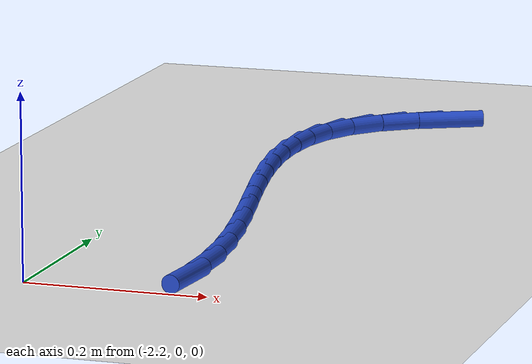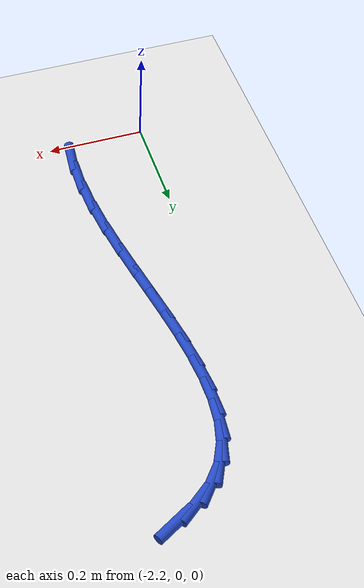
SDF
<sdf version="1.6">
 <world name="default">
  <model name="ground_plane">
   <static>1</static>
   <link name="link">
    <collision name="collision">
     <geometry><plane><normal>0 0 1</normal><size>100 100</size></plane></geometry>
     <surface><friction><ode><mu>100</mu><mu2>50</mu2></ode></friction></surface>
    </collision>
    <visual name="visual">
     <cast_shadows>0</cast_shadows>
     <geometry><plane><normal>0 0 1</normal><size>100 100</size></plane></geometry>
     <material>
      <script><uri>file://media/materials/scripts/gazebo.material</uri><name>Gazebo/WhiteGlow</name></script>
     </material>
    </visual>
   </link>
  </model>
  <model name="line">
   <link name="link_53">
    <pose>-1.9865557564795493 0.8761372895701723 0.01 0 1.57 0.47977876113144247</pose>
    <collision name="collision">
     <geometry><cylinder><radius>0.01</radius><length>0.08</length></cylinder></geometry>
    </collision>
    <visual name="visual">
     <material>
      <script><name>Gazebo/Blue</name><uri>file://media/materials/scripts/gazebo.material</uri></script>
     </material>
     <geometry><cylinder><radius>0.01</radius><length>0.08</length></cylinder></geometry>
    </visual>
   </link>
   <link name="link_54">
    <pose>-2.0290508005799324 0.8540258571233063 0.01 0 1.57 0.6371221187428122</pose>
    <collision name="collision">
     <geometry><cylinder><radius>0.01</radius><length>0.08</length></cylinder></geometry>
    </collision>
    <visual name="visual">
     <material>
      <script><name>Gazebo/Blue</name><uri>file://media/materials/scripts/gazebo.material</uri></script>
     </material>
     <geometry><cylinder><radius>0.01</radius><length>0.08</length></cylinder></geometry>
    </visual>
   </link>
   <link name="link_55">
    <pose>-2.0644280292689627 0.8278438723218284 0.01 0 1.57 0.8659878204186618</pose>
    <collision name="collision">
     <geometry><cylinder><radius>0.01</radius><length>0.08</length></cylinder></geometry>
    </collision>
    <visual name="visual">
     <material>
      <script><name>Gazebo/Blue</name><uri>file://media/materials/scripts/gazebo.material</uri></script>
     </material>
     <geometry><cylinder><radius>0.01</radius><length>0.08</length></cylinder></geometry>
    </visual>
   </link>
   <link name="link_56">
    <pose>-2.0912001421006963 0.7963673314486043 0.01 0 1.57 1.1116210077133022</pose>
    <collision name="collision">
     <geometry><cylinder><radius>0.01</radius><length>0.08</length></cylinder></geometry>
    </collision>
    <visual name="visual">
     <material>
      <script><name>Gazebo/Blue</name><uri>file://media/materials/scripts/gazebo.material</uri></script>
     </material>
     <geometry><cylinder><radius>0.01</radius><length>0.08</length></cylinder></geometry>
    </visual>
   </link>
   <link name="link_57">
    <pose>-2.1094388050186703 0.7594784789947233 0.01 0 1.57 1.3194317811411482</pose>
    <collision name="collision">
     <geometry><cylinder><radius>0.01</radius><length>0.08</length></cylinder></geometry>
    </collision>
    <visual name="visual">
     <material>
      <script><name>Gazebo/Blue</name><uri>file://media/materials/scripts/gazebo.material</uri></script>
     </material>
     <geometry><cylinder><radius>0.01</radius><length>0.08</length></cylinder></geometry>
    </visual>
   </link>
   <link name="link_58">
    <pose>-2.1201597758549253 0.7177294904819285 0.01 0 1.57 1.4791441731168002</pose>
    <collision name="collision">
     <geometry><cylinder><radius>0.01</radius><length>0.08</length></cylinder></geometry>
    </collision>
    <visual name="visual">
     <material>
      <script><name>Gazebo/Blue</name><uri>file://media/materials/scripts/gazebo.material</uri></script>
     </material>
     <geometry><cylinder><radius>0.01</radius><length>0.08</length></cylinder></geometry>
    </visual>
   </link>
   <link name="link_59">
    <pose>-2.124391994150612 0.6716818952205901 0.01 0 1.57 -1.5461432372652355</pose>
    <collision name="collision">
     <geometry><cylinder><radius>0.01</radius><length>0.08</length></cylinder></geometry>
    </collision>
    <visual name="visual">
     <material>
      <script><name>Gazebo/Blue</name><uri>file://media/materials/scripts/gazebo.material</uri></script>
     </material>
     <geometry><cylinder><radius>0.01</radius><length>0.08</length></cylinder></geometry>
    </visual>
   </link>
   <link name="link_60">
    <pose>-2.123164399446884 0.6218972225210803 0.01 0 1.57 -1.4643563840563643</pose>
    <collision name="collision">
     <geometry><cylinder><radius>0.01</radius><length>0.08</length></cylinder></geometry>
    </collision>
    <visual name="visual">
     <material>
      <script><name>Gazebo/Blue</name><uri>file://media/materials/scripts/gazebo.material</uri></script>
     </material>
     <geometry><cylinder><radius>0.01</radius><length>0.08</length></cylinder></geometry>
    </visual>
   </link>
   <link name="link_61">
    <pose>-2.1175059312848923 0.568937001693769 0.01 0 1.57 -1.409185755806936</pose>
    <collision name="collision">
     <geometry><cylinder><radius>0.01</radius><length>0.08</length></cylinder></geometry>
    </collision>
    <visual name="visual">
     <material>
      <script><name>Gazebo/Blue</name><uri>file://media/materials/scripts/gazebo.material</uri></script>
     </material>
     <geometry><cylinder><radius>0.01</radius><length>0.08</length></cylinder></geometry>
    </visual>
   </link>
   <link name="link_62">
    <pose>-2.1084455292057895 0.5133627620490288 0.01 0 1.57 -1.374935470202558</pose>
    <collision name="collision">
     <geometry><cylinder><radius>0.01</radius><length>0.08</length></cylinder></geometry>
    </collision>
    <visual name="visual">
     <material>
      <script><name>Gazebo/Blue</name><uri>file://media/materials/scripts/gazebo.material</uri></script>
     </material>
     <geometry><cylinder><radius>0.01</radius><length>0.08</length></cylinder></geometry>
    </visual>
   </link>
   <link name="link_63">
    <pose>-2.097012132750727 0.45573603289722925 0.01 0 1.57 -1.3579347675063826</pose>
    <collision name="collision">
     <geometry><cylinder><radius>0.01</radius><length>0.08</length></cylinder></geometry>
    </collision>
    <visual name="visual">
     <material>
      <script><name>Gazebo/Blue</name><uri>file://media/materials/scripts/gazebo.material</uri></script>
     </material>
     <geometry><cylinder><radius>0.01</radius><length>0.08</length></cylinder></geometry>
    </visual>
   </link>
   <link name="link_64">
    <pose>-2.084234681460858 0.39661834354874276 0.01 0 1.57 -1.3561180135367037</pose>
    <collision name="collision">
     <geometry><cylinder><radius>0.01</radius><length>0.08</length></cylinder></geometry>
    </collision>
    <visual name="visual">
     <material>
      <script><name>Gazebo/Blue</name><uri>file://media/materials/scripts/gazebo.material</uri></script>
     </material>
     <geometry><cylinder><radius>0.01</radius><length>0.08</length></cylinder></geometry>
    </visual>
   </link>
   <link name="link_65">
    <pose>-2.071142114877335 0.33657122331394007 0.01 0 1.57 -1.3686983949951808</pose>
    <collision name="collision">
     <geometry><cylinder><radius>0.01</radius><length>0.08</length></cylinder></geometry>
    </collision>
    <visual name="visual">
     <material>
      <script><name>Gazebo/Blue</name><uri>file://media/materials/scripts/gazebo.material</uri></script>
     </material>
     <geometry><cylinder><radius>0.01</radius><length>0.08</length></cylinder></geometry>
    </visual>
   </link>
   <link name="link_66">
    <pose>-2.0587633725413075 0.2761562015031914 0.01 0 1.57 -1.3959844507596084</pose>
    <collision name="collision">
     <geometry><cylinder><radius>0.01</radius><length>0.08</length></cylinder></geometry>
    </collision>
    <visual name="visual">
     <material>
      <script><name>Gazebo/Blue</name><uri>file://media/materials/scripts/gazebo.material</uri></script>
     </material>
     <geometry><cylinder><radius>0.01</radius><length>0.08</length></cylinder></geometry>
    </visual>
   </link>
   <link name="link_67">
    <pose>-2.048127393993929 0.21593480742686932 0.01 0 1.57 -1.4393115807158987</pose>
    <collision name="collision">
     <geometry><cylinder><radius>0.01</radius><length>0.08</length></cylinder></geometry>
    </collision>
    <visual name="visual">
     <material>
      <script><name>Gazebo/Blue</name><uri>file://media/materials/scripts/gazebo.material</uri></script>
     </material>
     <geometry><cylinder><radius>0.01</radius><length>0.08</length></cylinder></geometry>
    </visual>
   </link>
   <link name="link_68">
    <pose>-2.0402631187763522 0.15646857039534362 0.01 0 1.57 -1.5010273152706755</pose>
    <collision name="collision">
     <geometry><cylinder><radius>0.01</radius><length>0.08</length></cylinder></geometry>
    </collision>
    <visual name="visual">
     <material>
      <script><name>Gazebo/Blue</name><uri>file://media/materials/scripts/gazebo.material</uri></script>
     </material>
     <geometry><cylinder><radius>0.01</radius><length>0.08</length></cylinder></geometry>
    </visual>
   </link>
   <link name="link_69">
    <pose>-2.036199486429729 0.09831901971898656 0.01 0 1.57 1.5599807815392224</pose>
    <collision name="collision">
     <geometry><cylinder><radius>0.01</radius><length>0.08</length></cylinder></geometry>
    </collision>
    <visual name="visual">
     <material>
      <script><name>Gazebo/Blue</name><uri>file://media/materials/scripts/gazebo.material</uri></script>
     </material>
     <geometry><cylinder><radius>0.01</radius><length>0.08</length></cylinder></geometry>
    </visual>
   </link>
   <link name="link_70">
    <pose>-2.036808897063593 0.04197540900590196 0.01 0 1.57 1.4793092069854739</pose>
    <collision name="collision">
     <geometry><cylinder><radius>0.01</radius><length>0.08</length></cylinder></geometry>
    </collision>
    <visual name="visual">
     <material>
      <script><name>Gazebo/Blue</name><uri>file://media/materials/scripts/gazebo.material</uri></script>
     </material>
     <geometry><cylinder><radius>0.01</radius><length>0.08</length></cylinder></geometry>
    </visual>
   </link>
  </model>
 </world>
</sdf>
